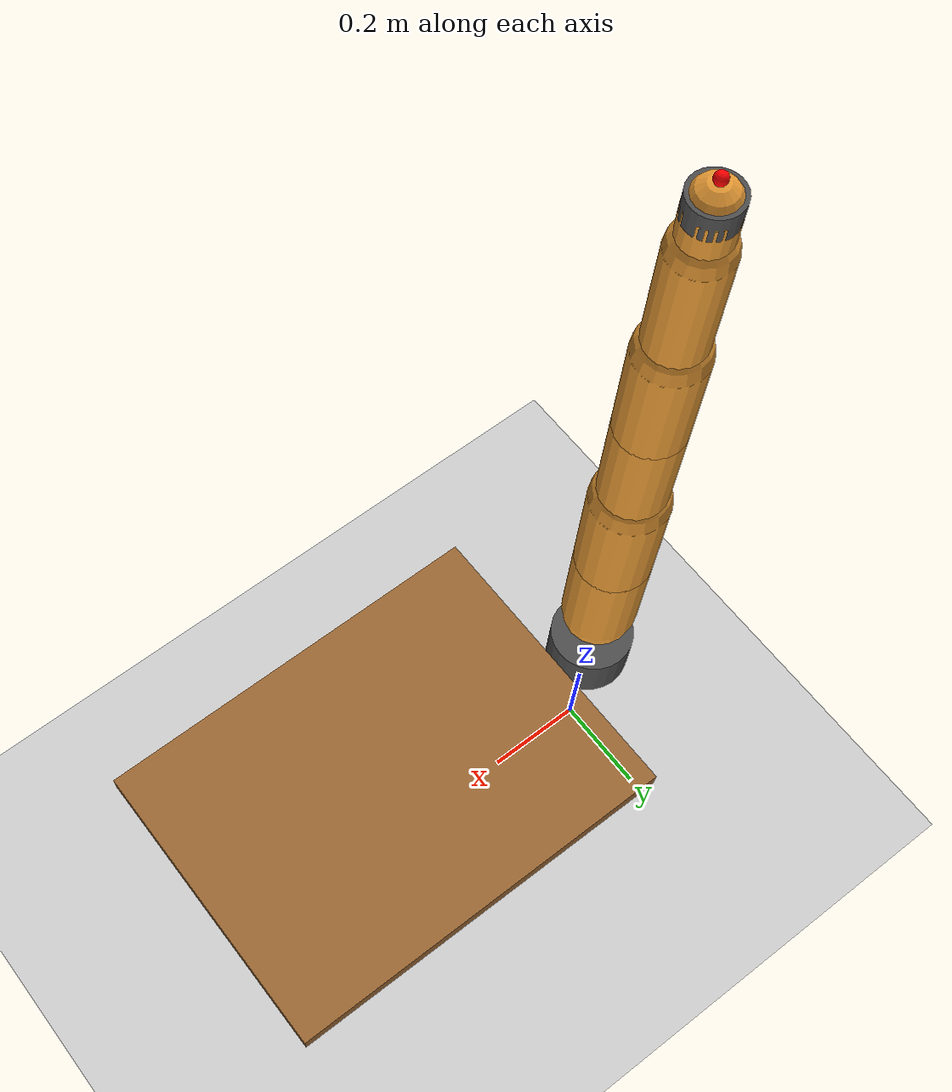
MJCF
<!-- models/kuka_iiwa/model.xml -->
<!-- KUKA IIWA 7-DOF arm in MuJoCo native format -->
<!-- Reference: https://github.com/google-deepmind/mujoco_menagerie/tree/main/kuka_iiwa_14 -->
<mujoco model="kuka_iiwa">
  <compiler angle="radian" meshdir="meshes/" autolimits="true"/>

  <option gravity="0 0 -9.81" timestep="0.002" integrator="implicitfast">
    <flag contact="enable"/>
  </option>

  <default>
    <joint damping="5.0" armature="0.1"/>
    <geom condim="4" friction="1.0 0.005 0.001"/>
    <motor ctrlrange="-87 87" ctrllimited="true"/>
  </default>

  <worldbody>
    <light directional="true" pos="0 0 3" dir="0 0 -1"/>
    <geom name="floor" type="plane" size="2 2 0.1" rgba="0.8 0.8 0.8 1"/>

    <!-- Table -->
    <body name="table" pos="0.5 0 0.4">
      <geom type="box" size="0.4 0.3 0.02" rgba="0.6 0.4 0.2 1" mass="10"/>
    </body>

    <!-- KUKA IIWA Base -->
    <body name="base" pos="0 0 0.36">
      <geom type="cylinder" size="0.08 0.05" rgba="0.3 0.3 0.3 1"/>

      <!-- Joint 1: A1 (base rotation) -->
      <body name="link1" pos="0 0 0.1575">
        <joint name="joint_a1" type="hinge" axis="0 0 1" range="-2.96706 2.96706"/>
        <geom type="capsule" fromto="0 0 0 0 0 0.2025" size="0.07" rgba="0.9 0.6 0.2 1"/>

        <!-- Joint 2: A2 -->
        <body name="link2" pos="0 0 0.2025">
          <joint name="joint_a2" type="hinge" axis="0 1 0" range="-2.0944 2.0944"/>
          <geom type="capsule" fromto="0 0 0 0 0 0.2045" size="0.07" rgba="0.9 0.6 0.2 1"/>

          <!-- Joint 3: A3 -->
          <body name="link3" pos="0 0 0.2045">
            <joint name="joint_a3" type="hinge" axis="0 0 1" range="-2.96706 2.96706"/>
            <geom type="capsule" fromto="0 0 0 0 0 0.2155" size="0.06" rgba="0.9 0.6 0.2 1"/>

            <!-- Joint 4: A4 -->
            <body name="link4" pos="0 0 0.2155">
              <joint name="joint_a4" type="hinge" axis="0 -1 0" range="-2.0944 2.0944"/>
              <geom type="capsule" fromto="0 0 0 0 0 0.1845" size="0.06" rgba="0.9 0.6 0.2 1"/>

              <!-- Joint 5: A5 -->
              <body name="link5" pos="0 0 0.1845">
                <joint name="joint_a5" type="hinge" axis="0 0 1" range="-2.96706 2.96706"/>
                <geom type="capsule" fromto="0 0 0 0 0 0.2155" size="0.05" rgba="0.9 0.6 0.2 1"/>

                <!-- Joint 6: A6 -->
                <body name="link6" pos="0 0 0.2155">
                  <joint name="joint_a6" type="hinge" axis="0 1 0" range="-2.0944 2.0944"/>
                  <geom type="capsule" fromto="0 0 0 0 0 0.081" size="0.04" rgba="0.9 0.6 0.2 1"/>

                  <!-- Joint 7: A7 (wrist) -->
                  <body name="link7" pos="0 0 0.081">
                    <joint name="joint_a7" type="hinge" axis="0 0 1" range="-3.05433 3.05433"/>
                    <geom type="cylinder" size="0.04 0.02" rgba="0.3 0.3 0.3 1"/>

                    <!-- End effector site (for IK / control target) -->
                    <site name="end_effector" pos="0 0 0.045" size="0.01" rgba="1 0 0 1"/>
                  </body>
                </body>
              </body>
            </body>
          </body>
        </body>
      </body>
    </body>
  </worldbody>

  <!-- Actuators: position-controlled joints -->
  <actuator>
    <position name="a1" joint="joint_a1" kp="500" ctrlrange="-2.96706 2.96706"/>
    <position name="a2" joint="joint_a2" kp="500" ctrlrange="-2.0944 2.0944"/>
    <position name="a3" joint="joint_a3" kp="500" ctrlrange="-2.96706 2.96706"/>
    <position name="a4" joint="joint_a4" kp="500" ctrlrange="-2.0944 2.0944"/>
    <position name="a5" joint="joint_a5" kp="500" ctrlrange="-2.96706 2.96706"/>
    <position name="a6" joint="joint_a6" kp="500" ctrlrange="-2.0944 2.0944"/>
    <position name="a7" joint="joint_a7" kp="500" ctrlrange="-3.05433 3.05433"/>
  </actuator>

  <!-- Sensors -->
  <sensor>
    <jointpos name="a1_pos" joint="joint_a1"/>
    <jointpos name="a2_pos" joint="joint_a2"/>
    <jointpos name="a3_pos" joint="joint_a3"/>
    <jointpos name="a4_pos" joint="joint_a4"/>
    <jointpos name="a5_pos" joint="joint_a5"/>
    <jointpos name="a6_pos" joint="joint_a6"/>
    <jointpos name="a7_pos" joint="joint_a7"/>
    <framepos name="ee_pos" objtype="site" objname="end_effector"/>
  </sensor>
</mujoco>
